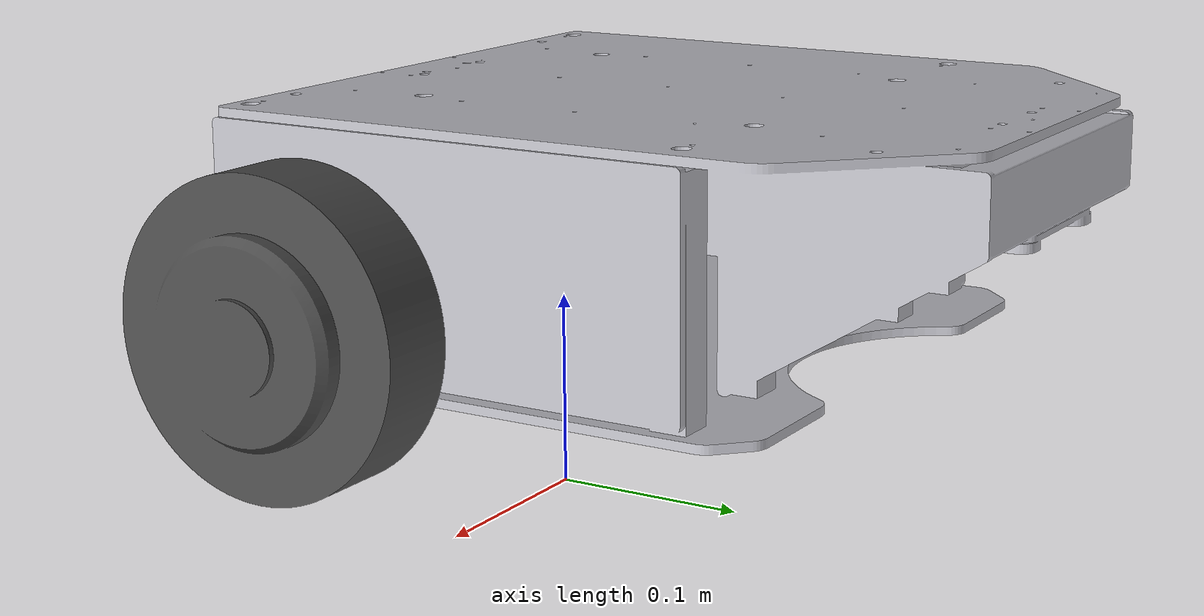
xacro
<?xml version="1.0"?>
<robot name="f120a" xmlns:xacro="http://www.ros.org/wiki/xacro">

  <xacro:include filename="$(find megarover_description)/urdf/materials.xacro" />
  <xacro:include filename="$(find megarover_description)/urdf/f120a_base_model.gazebo" />

  <link name="base_footprint" />

  <joint name="base_joint" type="fixed">
    <parent link="base_footprint" />
    <child link="base_link" />
    <origin xyz="-0.108 0 0" rpy="0 0 -1.5708" />
  </joint>

  <link name="base_link">
    <inertial>
      <origin xyz="6.540114906371634e-07 -0.003250873034356485 0.120269680948673" rpy="0 0 0" />
      <mass value="26.535431" />
      <inertia ixx="0.2129" iyy="0.2979" izz="0.4209"
        ixy="-0.000036" iyz="0.008147"
        ixz="0.0000368" />
    </inertial>
    <visual>
      <origin xyz="0 0 0" rpy="0 0 0" />
      <geometry>
        <mesh filename="package://megarover_description/meshes/f120a/base_link.stl" scale="0.001 0.001 0.001" />
      </geometry>
      <material name="silver" />
    </visual>
    <collision>
      <origin xyz="0 0 0" rpy="0 0 0" />
      <geometry>
        <mesh filename="package://megarover_description/meshes/f120a/base_link.stl" scale="0.001 0.001 0.001" />
      </geometry>
    </collision>
  </link>

  <joint name="right_wheel_joint" type="continuous">
    <origin xyz="0.202 0.108 0.085" rpy="0 -1.5708 0" />
    <parent link="base_link" />
    <child link="right_wheel_1" />
    <axis xyz="0.0 0.0 1.0" />
  </joint>

  <link name="right_wheel_1">
    <inertial>
      <origin xyz="0.0 0.0 -0.001" rpy="0 1.5708 0" />
      <mass value="3.241197" />
      <inertia ixx="0.01025" iyy="0.00621" izz="0.006211"
        ixy="0.0" iyz="0.0"
        ixz="0.0" />
    </inertial>
    <visual>
      <origin xyz="-0.085 -0.108 0.202" rpy="0 1.5708 0" />
      <geometry>
        <mesh filename="package://megarover_description/meshes/f120a/right_wheel_1.stl" scale="0.001 0.001 0.001" />
      </geometry>
      <material name="dark_grey" />
    </visual>
    <collision>
      <origin xyz="-0.085 -0.108 0.202" rpy="0 1.5708 0" />
      <geometry>
        <mesh filename="package://megarover_description/meshes/f120a/right_wheel_1.stl" scale="0.001 0.001 0.001" />
      </geometry>
    </collision>
  </link>

  <joint name="left_wheel_joint" type="continuous">
    <origin xyz="-0.202 0.108 0.085" rpy="0 -1.5708 0" />
    <parent link="base_link" />
    <child link="left_wheel_1" />
    <axis xyz="0.0 0.0 1.0" />
  </joint>

  <link name="left_wheel_1">
    <inertial>
      <origin xyz="0.0 0.0 0.001" rpy="0 1.5708 0" />
      <mass value="3.241197" />
      <inertia ixx="0.01025" iyy="0.00621" izz="0.006211"
        ixy="0.0" iyz="0.0"
        ixz="0.0" />
    </inertial>
    <visual>
      <origin xyz="-0.085 -0.108 -0.202" rpy="0 1.5708 0" />
      <geometry>
        <mesh filename="package://megarover_description/meshes/f120a/left_wheel_1.stl" scale="0.001 0.001 0.001" />
      </geometry>
      <material name="dark_grey" />
    </visual>
    <collision>
      <origin xyz="-0.085 -0.108 -0.202" rpy="0 1.5708 0" />
      <geometry>
        <mesh filename="package://megarover_description/meshes/f120a/left_wheel_1.stl" scale="0.001 0.001 0.001" />
      </geometry>
    </collision>
  </link>

</robot>

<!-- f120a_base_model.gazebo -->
<robot name="f120a" xmlns:xacro="http://www.ros.org/wiki/xacro">

  <xacro:property name="body_color" value="Gazebo/Silver" />
  <xacro:property name="wheel_color" value="Gazebo/DarkGray" />

  <gazebo reference="base_link">
    <material>${body_color}</material>
    <mu1>0.1</mu1>
    <mu2>0.1</mu2>
    <kp>1e6</kp>
    <kd>100.0</kd>
    <minDepth>0.001</minDepth>
    <maxVel>1.0</maxVel>
  </gazebo>

  <gazebo reference="right_wheel_1">
    <mu1>1.0</mu1>
    <mu2>1.0</mu2>
    <fdir1>1 0 0</fdir1>
    <kp>1e6</kp>
    <kd>10.0</kd>
    <minDepth>0.0001</minDepth>
    <maxVel>0.1</maxVel>
    <material>${wheel_color}</material>
  </gazebo>

  <gazebo reference="left_wheel_1">
    <mu1>1.0</mu1>
    <mu2>1.0</mu2>
    <fdir1>1 0 0</fdir1>
    <kp>1e6</kp>
    <kd>10.0</kd>
    <minDepth>0.0001</minDepth>
    <maxVel>0.1</maxVel>
    <material>${wheel_color}</material>
  </gazebo>

  <!-- diff drive plugin -->
  <gazebo>
    <plugin name="f120a_controller" filename="libgazebo_ros_diff_drive.so">
      <commandTopic>cmd_vel</commandTopic>
      <odometryTopic>odom</odometryTopic>
      <odometryFrame>odom</odometryFrame>
      <odometrySource>world</odometrySource>
      <publishOdomTF>true</publishOdomTF>
      <robotBaseFrame>base_footprint</robotBaseFrame>
      <publishWheelTF>false</publishWheelTF>
      <publishTf>true</publishTf>
      <publishWheelJointState>true</publishWheelJointState>
      <legacyMode>false</legacyMode>
      <updateRate>30</updateRate>
      <leftJoint>left_wheel_joint</leftJoint>
      <rightJoint>right_wheel_joint</rightJoint>
      <wheelSeparation>0.404</wheelSeparation>
      <wheelDiameter>0.170</wheelDiameter>
      <wheelAcceleration>1</wheelAcceleration>
      <wheelTorque>50</wheelTorque>
      <rosDebugLevel>na</rosDebugLevel>
    </plugin>
  </gazebo>

</robot>
